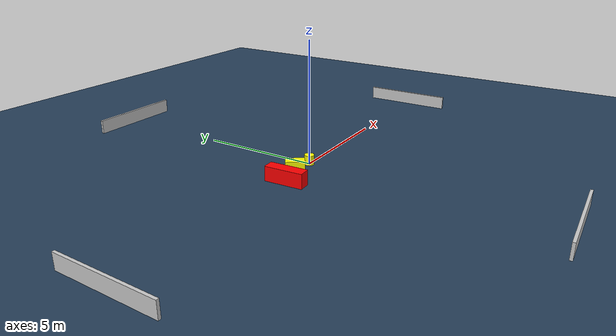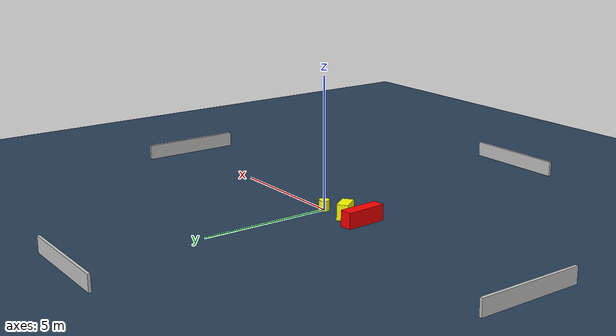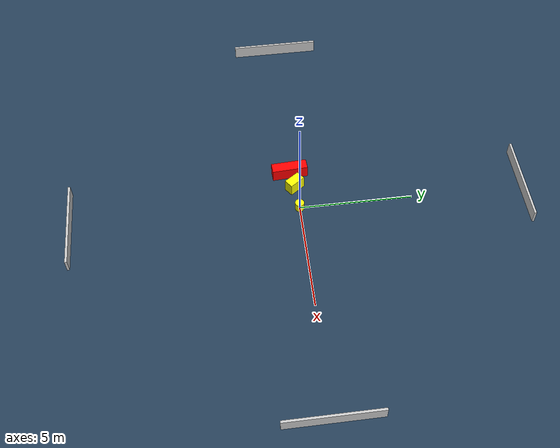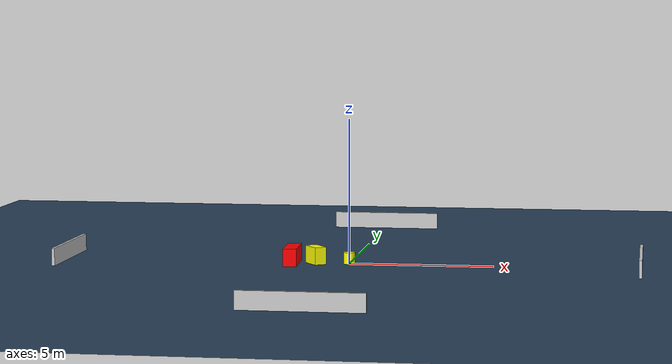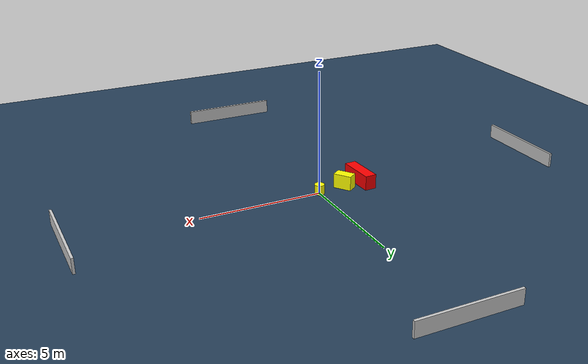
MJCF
<?xml version="1.0" ?>
<mujoco model="generated_environment">
  <option timestep="0.01" integrator="RK4" cone="elliptic"/>
  <default>
    <geom density="1"/>
  </default>
  <asset>
    <texture builtin="gradient" height="3072" name="skybox" rgb1="0.3 0.5 0.7" rgb2="0 0 0" type="skybox" width="512"/>
    <texture builtin="checker" height="300" name="groundplane" rgb1="0.2 0.3 0.4" rgb2="0.1 0.2 0.3" type="2d" width="300"/>
    <material name="groundplane" reflectance="0.2" texrepeat="5 5" texture="groundplane"/>
  </asset>
  <worldbody>
    <light dir="0 0 -1" directional="true" pos="0 0 1.5"/>
    <geom condim="3" friction="0.5 0.005 0.001" material="groundplane" name="floor" pos="0 0 0" size="0 0 0.05" type="plane"/>
    <body name="walls">
      <geom name="wall_1" condim="4" pos="-10.0 0.0 0.3" rgba="0.800000011920929 0.800000011920929 0.800000011920929 1.0" size="0.05 2.0 0.3" type="box"/>
      <geom name="wall_2" condim="4" pos="10.0 0.0 0.3" rgba="0.800000011920929 0.800000011920929 0.800000011920929 1.0" size="0.05 2.0 0.3" type="box"/>
      <geom name="wall_3" condim="4" pos="0.0 -10.0 0.3" rgba="0.800000011920929 0.800000011920929 0.800000011920929 1.0" size="2.0 0.05 0.3" type="box"/>
      <geom name="wall_4" condim="4" pos="0.0 10.0 0.3" rgba="0.800000011920929 0.800000011920929 0.800000011920929 1.0" size="2.0 0.05 0.3" type="box"/>
    </body>
    <body name="robot">
      <joint name="joint_x" type="slide" pos="0 0 0" axis="1 0 0"/>
      <joint name="joint_y" type="slide" pos="0 0 0" axis="0 1 0"/>
      <geom name="robot" type="cylinder" pos="0.0 0.0 0.2" size="0.2 0.2 0.0" mass="5.0" friction="1.0 0.005 0.0001" condim="4" rgba="1.0 1.0 0.0 1.0"/>
    </body>
    <body name="obstacle_1_movable">
      <geom name="obstacle_1_movable" condim="4" pos="-1.1594513105208257 -0.07961093550024506 0.3" euler="0 0 35.48892373207143" friction="0.0 0.005 0.001" rgba="1.0 1.0 0.0 1.0" size="0.21275876045300662 0.37429079445267877 0.3" type="box" mass="0.1"/>
      <joint type="free"/>
    </body>
    <body name="obstacle_2_static">
      <geom name="obstacle_2_static" condim="4" pos="-1.9707648864948688 -0.2143452353607616 0.3" euler="0 0 93.19254591484486" friction="0.0 0.005 0.001" rgba="1.0 0.0 0.0 1.0" size="0.7885900615148811 0.23646189867487505 0.3" type="box"/>
    </body>
  </worldbody>
  <actuator>
    <motor name="actuator_x" joint="joint_x" gear="1" ctrlrange="-1 1"/>
    <motor name="actuator_y" joint="joint_y" gear="1" ctrlrange="-1 1"/>
  </actuator>
</mujoco>
